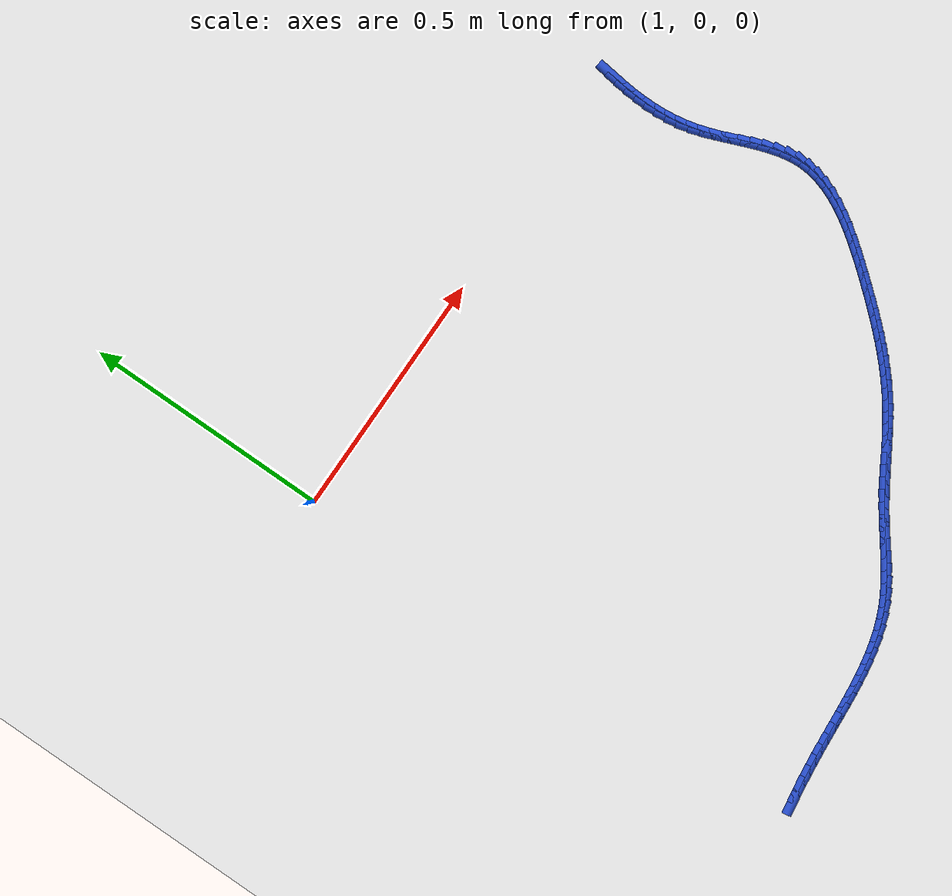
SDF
<sdf version="1.6">
 <world name="default">
  <model name="ground_plane">
   <static>1</static>
   <link name="link">
    <collision name="collision">
     <geometry><plane><normal>0 0 1</normal><size>100 100</size></plane></geometry>
     <surface><friction><ode><mu>100</mu><mu2>50</mu2></ode></friction></surface>
    </collision>
    <visual name="visual">
     <cast_shadows>0</cast_shadows>
     <geometry><plane><normal>0 0 1</normal><size>100 100</size></plane></geometry>
     <material>
      <script><uri>file://media/materials/scripts/gazebo.material</uri><name>Gazebo/WhiteGlow</name></script>
     </material>
    </visual>
   </link>
  </model>
  <model name="line">
   <link name="link_145">
    <pose>1.9955184508098398 -0.008092268205295312 0.01 0 1.57 1.4522831248272066</pose>
    <collision name="collision">
     <geometry><cylinder><radius>0.01</radius><length>0.08</length></cylinder></geometry>
    </collision>
    <visual name="visual">
     <material>
      <script><name>Gazebo/Blue</name><uri>file://media/materials/scripts/gazebo.material</uri></script>
     </material>
     <geometry><cylinder><radius>0.01</radius><length>0.08</length></cylinder></geometry>
    </visual>
   </link>
   <link name="link_146">
    <pose>1.992730319903585 -0.031507931349127084 0.01 0 1.57 1.488776585115233</pose>
    <collision name="collision">
     <geometry><cylinder><radius>0.01</radius><length>0.08</length></cylinder></geometry>
    </collision>
    <visual name="visual">
     <material>
      <script><name>Gazebo/Blue</name><uri>file://media/materials/scripts/gazebo.material</uri></script>
     </material>
     <geometry><cylinder><radius>0.01</radius><length>0.08</length></cylinder></geometry>
    </visual>
   </link>
   <link name="link_147">
    <pose>1.9908144411228046 -0.05481427958639143 0.01 0 1.57 1.530479069841515</pose>
    <collision name="collision">
     <geometry><cylinder><radius>0.01</radius><length>0.08</length></cylinder></geometry>
    </collision>
    <visual name="visual">
     <material>
      <script><name>Gazebo/Blue</name><uri>file://media/materials/scripts/gazebo.material</uri></script>
     </material>
     <geometry><cylinder><radius>0.01</radius><length>0.08</length></cylinder></geometry>
    </visual>
   </link>
   <link name="link_148">
    <pose>1.9898784963725058 -0.07801619474189017 0.01 0 1.57 -1.5642312407793884</pose>
    <collision name="collision">
     <geometry><cylinder><radius>0.01</radius><length>0.08</length></cylinder></geometry>
    </collision>
    <visual name="visual">
     <material>
      <script><name>Gazebo/Blue</name><uri>file://media/materials/scripts/gazebo.material</uri></script>
     </material>
     <geometry><cylinder><radius>0.01</radius><length>0.08</length></cylinder></geometry>
    </visual>
   </link>
   <link name="link_149">
    <pose>1.9900301675576948 -0.10111855864042515 0.01 0 1.57 -1.512318789969257</pose>
    <collision name="collision">
     <geometry><cylinder><radius>0.01</radius><length>0.08</length></cylinder></geometry>
    </collision>
    <visual name="visual">
     <material>
      <script><name>Gazebo/Blue</name><uri>file://media/materials/scripts/gazebo.material</uri></script>
     </material>
     <geometry><cylinder><radius>0.01</radius><length>0.08</length></cylinder></geometry>
    </visual>
   </link>
   <link name="link_150">
    <pose>1.991377136583378 -0.12412625310679817 0.01 0 1.57 -1.4556796687642202</pose>
    <collision name="collision">
     <geometry><cylinder><radius>0.01</radius><length>0.08</length></cylinder></geometry>
    </collision>
    <visual name="visual">
     <material>
      <script><name>Gazebo/Blue</name><uri>file://media/materials/scripts/gazebo.material</uri></script>
     </material>
     <geometry><cylinder><radius>0.01</radius><length>0.08</length></cylinder></geometry>
    </visual>
   </link>
   <link name="link_151">
    <pose>1.9940270853545605 -0.147044159965811 0.01 0 1.57 -1.394796831375881</pose>
    <collision name="collision">
     <geometry><cylinder><radius>0.01</radius><length>0.08</length></cylinder></geometry>
    </collision>
    <visual name="visual">
     <material>
      <script><name>Gazebo/Blue</name><uri>file://media/materials/scripts/gazebo.material</uri></script>
     </material>
     <geometry><cylinder><radius>0.01</radius><length>0.08</length></cylinder></geometry>
    </visual>
   </link>
   <link name="link_152">
    <pose>1.9980876957762495 -0.16987716104226475 0.01 0 1.57 -1.3303435392417946</pose>
    <collision name="collision">
     <geometry><cylinder><radius>0.01</radius><length>0.08</length></cylinder></geometry>
    </collision>
    <visual name="visual">
     <material>
      <script><name>Gazebo/Blue</name><uri>file://media/materials/scripts/gazebo.material</uri></script>
     </material>
     <geometry><cylinder><radius>0.01</radius><length>0.08</length></cylinder></geometry>
    </visual>
   </link>
   <link name="link_153">
    <pose>2.00366664975345 -0.19263013816096264 0.01 0 1.57 -1.2661140011665262</pose>
    <collision name="collision">
     <geometry><cylinder><radius>0.01</radius><length>0.08</length></cylinder></geometry>
    </collision>
    <visual name="visual">
     <material>
      <script><name>Gazebo/Blue</name><uri>file://media/materials/scripts/gazebo.material</uri></script>
     </material>
     <geometry><cylinder><radius>0.01</radius><length>0.08</length></cylinder></geometry>
    </visual>
   </link>
   <link name="link_154">
    <pose>2.01079800242413 -0.21530721281981616 0.01 0 1.57 -1.2186362302852527</pose>
    <collision name="collision">
     <geometry><cylinder><radius>0.01</radius><length>0.08</length></cylinder></geometry>
    </collision>
    <visual name="visual">
     <material>
      <script><name>Gazebo/Blue</name><uri>file://media/materials/scripts/gazebo.material</uri></script>
     </material>
     <geometry><cylinder><radius>0.01</radius><length>0.08</length></cylinder></geometry>
    </visual>
   </link>
   <link name="link_155">
    <pose>2.019103393406347 -0.23790824759539472 0.01 0 1.57 -1.1922739300528087</pose>
    <collision name="collision">
     <geometry><cylinder><radius>0.01</radius><length>0.08</length></cylinder></geometry>
    </collision>
    <visual name="visual">
     <material>
      <script><name>Gazebo/Blue</name><uri>file://media/materials/scripts/gazebo.material</uri></script>
     </material>
     <geometry><cylinder><radius>0.01</radius><length>0.08</length></cylinder></geometry>
    </visual>
   </link>
   <link name="link_156">
    <pose>2.0280609489334203 -0.26043162303416084 0.01 0 1.57 -1.1860696350824496</pose>
    <collision name="collision">
     <geometry><cylinder><radius>0.01</radius><length>0.08</length></cylinder></geometry>
    </collision>
    <visual name="visual">
     <material>
      <script><name>Gazebo/Blue</name><uri>file://media/materials/scripts/gazebo.material</uri></script>
     </material>
     <geometry><cylinder><radius>0.01</radius><length>0.08</length></cylinder></geometry>
    </visual>
   </link>
   <link name="link_157">
    <pose>2.037148649971566 -0.2828757181824364 0.01 0 1.57 -1.1999427197665633</pose>
    <collision name="collision">
     <geometry><cylinder><radius>0.01</radius><length>0.08</length></cylinder></geometry>
    </collision>
    <visual name="visual">
     <material>
      <script><name>Gazebo/Blue</name><uri>file://media/materials/scripts/gazebo.material</uri></script>
     </material>
     <geometry><cylinder><radius>0.01</radius><length>0.08</length></cylinder></geometry>
    </visual>
   </link>
   <link name="link_158">
    <pose>2.0458444774869977 -0.30523891208654347 0.01 0 1.57 -1.2347733994445658</pose>
    <collision name="collision">
     <geometry><cylinder><radius>0.01</radius><length>0.08</length></cylinder></geometry>
    </collision>
    <visual name="visual">
     <material>
      <script><name>Gazebo/Blue</name><uri>file://media/materials/scripts/gazebo.material</uri></script>
     </material>
     <geometry><cylinder><radius>0.01</radius><length>0.08</length></cylinder></geometry>
    </visual>
   </link>
   <link name="link_159">
    <pose>2.0536264124459294 -0.3275195837928038 0.01 0 1.57 -1.2923234848242484</pose>
    <collision name="collision">
     <geometry><cylinder><radius>0.01</radius><length>0.08</length></cylinder></geometry>
    </collision>
    <visual name="visual">
     <material>
      <script><name>Gazebo/Blue</name><uri>file://media/materials/scripts/gazebo.material</uri></script>
     </material>
     <geometry><cylinder><radius>0.01</radius><length>0.08</length></cylinder></geometry>
    </visual>
   </link>
   <link name="link_160">
    <pose>2.059972435814577 -0.3497161123475397 0.01 0 1.57 -1.3748823900939322</pose>
    <collision name="collision">
     <geometry><cylinder><radius>0.01</radius><length>0.08</length></cylinder></geometry>
    </collision>
    <visual name="visual">
     <material>
      <script><name>Gazebo/Blue</name><uri>file://media/materials/scripts/gazebo.material</uri></script>
     </material>
     <geometry><cylinder><radius>0.01</radius><length>0.08</length></cylinder></geometry>
    </visual>
   </link>
   <link name="link_161">
    <pose>2.064360528559154 -0.37182687679707294 0.01 0 1.57 -1.4843704531485467</pose>
    <collision name="collision">
     <geometry><cylinder><radius>0.01</radius><length>0.08</length></cylinder></geometry>
    </collision>
    <visual name="visual">
     <material>
      <script><name>Gazebo/Blue</name><uri>file://media/materials/scripts/gazebo.material</uri></script>
     </material>
     <geometry><cylinder><radius>0.01</radius><length>0.08</length></cylinder></geometry>
    </visual>
   </link>
   <link name="link_162">
    <pose>2.066268671645875 -0.3938502561877254 0.01 0 1.57 1.5255401296336752</pose>
    <collision name="collision">
     <geometry><cylinder><radius>0.01</radius><length>0.08</length></cylinder></geometry>
    </collision>
    <visual name="visual">
     <material>
      <script><name>Gazebo/Blue</name><uri>file://media/materials/scripts/gazebo.material</uri></script>
     </material>
     <geometry><cylinder><radius>0.01</radius><length>0.08</length></cylinder></geometry>
    </visual>
   </link>
   <link name="link_163">
    <pose>2.0652754941067366 -0.4157809410164994 0.01 0 1.57 1.399237916429022</pose>
    <collision name="collision">
     <geometry><cylinder><radius>0.01</radius><length>0.08</length></cylinder></geometry>
    </collision>
    <visual name="visual">
     <material>
      <script><name>Gazebo/Blue</name><uri>file://media/materials/scripts/gazebo.material</uri></script>
     </material>
     <geometry><cylinder><radius>0.01</radius><length>0.08</length></cylinder></geometry>
    </visual>
   </link>
   <link name="link_164">
    <pose>2.0614961359465607 -0.43759395973156817 0.01 0 1.57 1.2889720271413376</pose>
    <collision name="collision">
     <geometry><cylinder><radius>0.01</radius><length>0.08</length></cylinder></geometry>
    </collision>
    <visual name="visual">
     <material>
      <script><name>Gazebo/Blue</name><uri>file://media/materials/scripts/gazebo.material</uri></script>
     </material>
     <geometry><cylinder><radius>0.01</radius><length>0.08</length></cylinder></geometry>
    </visual>
   </link>
   <link name="link_165">
    <pose>2.0552237887005615 -0.45925781555037914 0.01 0 1.57 1.195164840934346</pose>
    <collision name="collision">
     <geometry><cylinder><radius>0.01</radius><length>0.08</length></cylinder></geometry>
    </collision>
    <visual name="visual">
     <material>
      <script><name>Gazebo/Blue</name><uri>file://media/materials/scripts/gazebo.material</uri></script>
     </material>
     <geometry><cylinder><radius>0.01</radius><length>0.08</length></cylinder></geometry>
    </visual>
   </link>
   <link name="link_166">
    <pose>2.0467517612340007 -0.48074100739046943 0.01 0 1.57 1.1168654327576373</pose>
    <collision name="collision">
     <geometry><cylinder><radius>0.01</radius><length>0.08</length></cylinder></geometry>
    </collision>
    <visual name="visual">
     <material>
      <script><name>Gazebo/Blue</name><uri>file://media/materials/scripts/gazebo.material</uri></script>
     </material>
     <geometry><cylinder><radius>0.01</radius><length>0.08</length></cylinder></geometry>
    </visual>
   </link>
   <link name="link_167">
    <pose>2.0363733624121414 -0.5020120341693759 0.01 0 1.57 1.0525172734010837</pose>
    <collision name="collision">
     <geometry><cylinder><radius>0.01</radius><length>0.08</length></cylinder></geometry>
    </collision>
    <visual name="visual">
     <material>
      <script><name>Gazebo/Blue</name><uri>file://media/materials/scripts/gazebo.material</uri></script>
     </material>
     <geometry><cylinder><radius>0.01</radius><length>0.08</length></cylinder></geometry>
    </visual>
   </link>
   <link name="link_168">
    <pose>2.0243819011002477 -0.5230393948046359 0.01 0 1.57 1.0004646953712335</pose>
    <collision name="collision">
     <geometry><cylinder><radius>0.01</radius><length>0.08</length></cylinder></geometry>
    </collision>
    <visual name="visual">
     <material>
      <script><name>Gazebo/Blue</name><uri>file://media/materials/scripts/gazebo.material</uri></script>
     </material>
     <geometry><cylinder><radius>0.01</radius><length>0.08</length></cylinder></geometry>
    </visual>
   </link>
   <link name="link_169">
    <pose>2.011070686163581 -0.5437915882137854 0.01 0 1.57 0.9592242166368631</pose>
    <collision name="collision">
     <geometry><cylinder><radius>0.01</radius><length>0.08</length></cylinder></geometry>
    </collision>
    <visual name="visual">
     <material>
      <script><name>Gazebo/Blue</name><uri>file://media/materials/scripts/gazebo.material</uri></script>
     </material>
     <geometry><cylinder><radius>0.01</radius><length>0.08</length></cylinder></geometry>
    </visual>
   </link>
   <link name="link_170">
    <pose>1.9967330264674055 -0.564237113314363 0.01 0 1.57 0.9276047070627488</pose>
    <collision name="collision">
     <geometry><cylinder><radius>0.01</radius><length>0.08</length></cylinder></geometry>
    </collision>
    <visual name="visual">
     <material>
      <script><name>Gazebo/Blue</name><uri>file://media/materials/scripts/gazebo.material</uri></script>
     </material>
     <geometry><cylinder><radius>0.01</radius><length>0.08</length></cylinder></geometry>
    </visual>
   </link>
   <link name="link_171">
    <pose>1.9816622308769831 -0.5843444690239051 0.01 0 1.57 0.9047506166555871</pose>
    <collision name="collision">
     <geometry><cylinder><radius>0.01</radius><length>0.08</length></cylinder></geometry>
    </collision>
    <visual name="visual">
     <material>
      <script><name>Gazebo/Blue</name><uri>file://media/materials/scripts/gazebo.material</uri></script>
     </material>
     <geometry><cylinder><radius>0.01</radius><length>0.08</length></cylinder></geometry>
    </visual>
   </link>
   <link name="link_172">
    <pose>1.9661516082575767 -0.6040821542599486 0.01 0 1.57 0.8901197725143889</pose>
    <collision name="collision">
     <geometry><cylinder><radius>0.01</radius><length>0.08</length></cylinder></geometry>
    </collision>
    <visual name="visual">
     <material>
      <script><name>Gazebo/Blue</name><uri>file://media/materials/scripts/gazebo.material</uri></script>
     </material>
     <geometry><cylinder><radius>0.01</radius><length>0.08</length></cylinder></geometry>
    </visual>
   </link>
   <link name="link_173">
    <pose>1.9504932302048281 -0.6234187140948049 0.01 0 1.57 0.879982913747289</pose>
    <collision name="collision">
     <geometry><cylinder><radius>0.01</radius><length>0.08</length></cylinder></geometry>
    </collision>
    <visual name="visual">
     <material>
      <script><name>Gazebo/Blue</name><uri>file://media/materials/scripts/gazebo.material</uri></script>
     </material>
     <geometry><cylinder><radius>0.01</radius><length>0.08</length></cylinder></geometry>
    </visual>
   </link>
   <link name="link_174">
    <pose>1.9348615992112885 -0.6423270793671032 0.01 0 1.57 0.8678353109830297</pose>
    <collision name="collision">
     <geometry><cylinder><radius>0.01</radius><length>0.08</length></cylinder></geometry>
    </collision>
    <visual name="visual">
     <material>
      <script><name>Gazebo/Blue</name><uri>file://media/materials/scripts/gazebo.material</uri></script>
     </material>
     <geometry><cylinder><radius>0.01</radius><length>0.08</length></cylinder></geometry>
    </visual>
   </link>
   <link name="link_175">
    <pose>1.919218401087608 -0.6607881197719466 0.01 0 1.57 0.8529270092139168</pose>
    <collision name="collision">
     <geometry><cylinder><radius>0.01</radius><length>0.08</length></cylinder></geometry>
    </collision>
    <visual name="visual">
     <material>
      <script><name>Gazebo/Blue</name><uri>file://media/materials/scripts/gazebo.material</uri></script>
     </material>
     <geometry><cylinder><radius>0.01</radius><length>0.08</length></cylinder></geometry>
    </visual>
   </link>
   <link name="link_176">
    <pose>1.9035029056153734 -0.6787835412059811 0.01 0 1.57 0.8352065659324367</pose>
    <collision name="collision">
     <geometry><cylinder><radius>0.01</radius><length>0.08</length></cylinder></geometry>
    </collision>
    <visual name="visual">
     <material>
      <script><name>Gazebo/Blue</name><uri>file://media/materials/scripts/gazebo.material</uri></script>
     </material>
     <geometry><cylinder><radius>0.01</radius><length>0.08</length></cylinder></geometry>
    </visual>
   </link>
   <link name="link_177">
    <pose>1.8876543825761696 -0.6962950495658511 0.01 0 1.57 0.814647733594029</pose>
    <collision name="collision">
     <geometry><cylinder><radius>0.01</radius><length>0.08</length></cylinder></geometry>
    </collision>
    <visual name="visual">
     <material>
      <script><name>Gazebo/Blue</name><uri>file://media/materials/scripts/gazebo.material</uri></script>
     </material>
     <geometry><cylinder><radius>0.01</radius><length>0.08</length></cylinder></geometry>
    </visual>
   </link>
   <link name="link_178">
    <pose>1.871612101751582 -0.7133043507482024 0.01 0 1.57 0.7912552793359019</pose>
    <collision name="collision">
     <geometry><cylinder><radius>0.01</radius><length>0.08</length></cylinder></geometry>
    </collision>
    <visual name="visual">
     <material>
      <script><name>Gazebo/Blue</name><uri>file://media/materials/scripts/gazebo.material</uri></script>
     </material>
     <geometry><cylinder><radius>0.01</radius><length>0.08</length></cylinder></geometry>
    </visual>
   </link>
   <link name="link_179">
    <pose>1.8553153329231957 -0.7297931506496798 0.01 0 1.57 0.7650710481394957</pose>
    <collision name="collision">
     <geometry><cylinder><radius>0.01</radius><length>0.08</length></cylinder></geometry>
    </collision>
    <visual name="visual">
     <material>
      <script><name>Gazebo/Blue</name><uri>file://media/materials/scripts/gazebo.material</uri></script>
     </material>
     <geometry><cylinder><radius>0.01</radius><length>0.08</length></cylinder></geometry>
    </visual>
   </link>
   <link name="link_180">
    <pose>1.8387033458725965 -0.7457431551669286 0.01 0 1.57 0.7361798051041474</pose>
    <collision name="collision">
     <geometry><cylinder><radius>0.01</radius><length>0.08</length></cylinder></geometry>
    </collision>
    <visual name="visual">
     <material>
      <script><name>Gazebo/Blue</name><uri>file://media/materials/scripts/gazebo.material</uri></script>
     </material>
     <geometry><cylinder><radius>0.01</radius><length>0.08</length></cylinder></geometry>
    </visual>
   </link>
   <link name="link_181">
    <pose>1.8217154103813702 -0.7611360701965943 0.01 0 1.57 0.7047142347113198</pose>
    <collision name="collision">
     <geometry><cylinder><radius>0.01</radius><length>0.08</length></cylinder></geometry>
    </collision>
    <visual name="visual">
     <material>
      <script><name>Gazebo/Blue</name><uri>file://media/materials/scripts/gazebo.material</uri></script>
     </material>
     <geometry><cylinder><radius>0.01</radius><length>0.08</length></cylinder></geometry>
    </visual>
   </link>
   <link name="link_182">
    <pose>1.8042907962311012 -0.7759536016353218 0.01 0 1.57 0.6708583547878879</pose>
    <collision name="collision">
     <geometry><cylinder><radius>0.01</radius><length>0.08</length></cylinder></geometry>
    </collision>
    <visual name="visual">
     <material>
      <script><name>Gazebo/Blue</name><uri>file://media/materials/scripts/gazebo.material</uri></script>
     </material>
     <geometry><cylinder><radius>0.01</radius><length>0.08</length></cylinder></geometry>
    </visual>
   </link>
   <link name="link_183">
    <pose>1.7863687732033757 -0.7901774553797566 0.01 0 1.57 0.6349383120565114</pose>
    <collision name="collision">
     <geometry><cylinder><radius>0.01</radius><length>0.08</length></cylinder></geometry>
    </collision>
    <visual name="visual">
     <material>
      <script><name>Gazebo/Blue</name><uri>file://media/materials/scripts/gazebo.material</uri></script>
     </material>
     <geometry><cylinder><radius>0.01</radius><length>0.08</length></cylinder></geometry>
    </visual>
   </link>
   <link name="link_184">
    <pose>1.7678901389925474 -0.8037907702092068 0.01 0 1.57 0.6013789916894229</pose>
    <collision name="collision">
     <geometry><cylinder><radius>0.01</radius><length>0.08</length></cylinder></geometry>
    </collision>
    <visual name="visual">
     <material>
      <script><name>Gazebo/Blue</name><uri>file://media/materials/scripts/gazebo.material</uri></script>
     </material>
     <geometry><cylinder><radius>0.01</radius><length>0.08</length></cylinder></geometry>
    </visual>
   </link>
   <link name="link_185">
    <pose>1.7488671160820741 -0.8168436673539446 0.01 0 1.57 0.5760557590125011</pose>
    <collision name="collision">
     <geometry><cylinder><radius>0.01</radius><length>0.08</length></cylinder></geometry>
    </collision>
    <visual name="visual">
     <material>
      <script><name>Gazebo/Blue</name><uri>file://media/materials/scripts/gazebo.material</uri></script>
     </material>
     <geometry><cylinder><radius>0.01</radius><length>0.08</length></cylinder></geometry>
    </visual>
   </link>
   <link name="link_186">
    <pose>1.7294123380675337 -0.8294804339840767 0.01 0 1.57 0.5592544231906783</pose>
    <collision name="collision">
     <geometry><cylinder><radius>0.01</radius><length>0.08</length></cylinder></geometry>
    </collision>
    <visual name="visual">
     <material>
      <script><name>Gazebo/Blue</name><uri>file://media/materials/scripts/gazebo.material</uri></script>
     </material>
     <geometry><cylinder><radius>0.01</radius><length>0.08</length></cylinder></geometry>
    </visual>
   </link>
   <link name="link_187">
    <pose>1.7096459754053221 -0.8418524253677249 0.01 0 1.57 0.5508136680130788</pose>
    <collision name="collision">
     <geometry><cylinder><radius>0.01</radius><length>0.08</length></cylinder></geometry>
    </collision>
    <visual name="visual">
     <material>
      <script><name>Gazebo/Blue</name><uri>file://media/materials/scripts/gazebo.material</uri></script>
     </material>
     <geometry><cylinder><radius>0.01</radius><length>0.08</length></cylinder></geometry>
    </visual>
   </link>
   <link name="link_188">
    <pose>1.6896881985518337 -0.854110996773011 0.01 0 1.57 0.5506024996118823</pose>
    <collision name="collision">
     <geometry><cylinder><radius>0.01</radius><length>0.08</length></cylinder></geometry>
    </collision>
    <visual name="visual">
     <material>
      <script><name>Gazebo/Blue</name><uri>file://media/materials/scripts/gazebo.material</uri></script>
     </material>
     <geometry><cylinder><radius>0.01</radius><length>0.08</length></cylinder></geometry>
    </visual>
   </link>
   <link name="link_189">
    <pose>1.6696591779634637 -0.8664075034680576 0.01 0 1.57 0.5585359180002576</pose>
    <collision name="collision">
     <geometry><cylinder><radius>0.01</radius><length>0.08</length></cylinder></geometry>
    </collision>
    <visual name="visual">
     <material>
      <script><name>Gazebo/Blue</name><uri>file://media/materials/scripts/gazebo.material</uri></script>
     </material>
     <geometry><cylinder><radius>0.01</radius><length>0.08</length></cylinder></geometry>
    </visual>
   </link>
   <link name="link_190">
    <pose>1.6496790840966076 -0.8788933007209859 0.01 0 1.57 0.5745738712467254</pose>
    <collision name="collision">
     <geometry><cylinder><radius>0.01</radius><length>0.08</length></cylinder></geometry>
    </collision>
    <visual name="visual">
     <material>
      <script><name>Gazebo/Blue</name><uri>file://media/materials/scripts/gazebo.material</uri></script>
     </material>
     <geometry><cylinder><radius>0.01</radius><length>0.08</length></cylinder></geometry>
    </visual>
   </link>
   <link name="link_191">
    <pose>1.6298680874076608 -0.8917197437999186 0.01 0 1.57 0.5987044195310732</pose>
    <collision name="collision">
     <geometry><cylinder><radius>0.01</radius><length>0.08</length></cylinder></geometry>
    </collision>
    <visual name="visual">
     <material>
      <script><name>Gazebo/Blue</name><uri>file://media/materials/scripts/gazebo.material</uri></script>
     </material>
     <geometry><cylinder><radius>0.01</radius><length>0.08</length></cylinder></geometry>
    </visual>
   </link>
   <link name="link_192">
    <pose>1.6103463550158539 -0.9050381826404256 0.01 0 1.57 0.6269743721362212</pose>
    <collision name="collision">
     <geometry><cylinder><radius>0.01</radius><length>0.08</length></cylinder></geometry>
    </collision>
    <visual name="visual">
     <material>
      <script><name>Gazebo/Blue</name><uri>file://media/materials/scripts/gazebo.material</uri></script>
     </material>
     <geometry><cylinder><radius>0.01</radius><length>0.08</length></cylinder></geometry>
    </visual>
   </link>
   <link name="link_193">
    <pose>1.5911844947109555 -0.918920774886795 0.01 0 1.57 0.6455432518118133</pose>
    <collision name="collision">
     <geometry><cylinder><radius>0.01</radius><length>0.08</length></cylinder></geometry>
    </collision>
    <visual name="visual">
     <material>
      <script><name>Gazebo/Blue</name><uri>file://media/materials/scripts/gazebo.material</uri></script>
     </material>
     <geometry><cylinder><radius>0.01</radius><length>0.08</length></cylinder></geometry>
    </visual>
   </link>
   <link name="link_194">
    <pose>1.5722785139313316 -0.9331606792130629 0.01 0 1.57 0.651441969587698</pose>
    <collision name="collision">
     <geometry><cylinder><radius>0.01</radius><length>0.08</length></cylinder></geometry>
    </collision>
    <visual name="visual">
     <material>
      <script><name>Gazebo/Blue</name><uri>file://media/materials/scripts/gazebo.material</uri></script>
     </material>
     <geometry><cylinder><radius>0.01</radius><length>0.08</length></cylinder></geometry>
    </visual>
   </link>
   <link name="link_195">
    <pose>1.5534859893429853 -0.9474896446464406 0.01 0 1.57 0.6446445808548152</pose>
    <collision name="collision">
     <geometry><cylinder><radius>0.01</radius><length>0.08</length></cylinder></geometry>
    </collision>
    <visual name="visual">
     <material>
      <script><name>Gazebo/Blue</name><uri>file://media/materials/scripts/gazebo.material</uri></script>
     </material>
     <geometry><cylinder><radius>0.01</radius><length>0.08</length></cylinder></geometry>
    </visual>
   </link>
   <link name="link_196">
    <pose>1.5346644976119193 -0.961639420214139 0.01 0 1.57 0.6249745740603517</pose>
    <collision name="collision">
     <geometry><cylinder><radius>0.01</radius><length>0.08</length></cylinder></geometry>
    </collision>
    <visual name="visual">
     <material>
      <script><name>Gazebo/Blue</name><uri>file://media/materials/scripts/gazebo.material</uri></script>
     </material>
     <geometry><cylinder><radius>0.01</radius><length>0.08</length></cylinder></geometry>
    </visual>
   </link>
   <link name="link_197">
    <pose>1.5156716154041368 -0.9753417549433688 0.01 0 1.57 0.5921332604747954</pose>
    <collision name="collision">
     <geometry><cylinder><radius>0.01</radius><length>0.08</length></cylinder></geometry>
    </collision>
    <visual name="visual">
     <material>
      <script><name>Gazebo/Blue</name><uri>file://media/materials/scripts/gazebo.material</uri></script>
     </material>
     <geometry><cylinder><radius>0.01</radius><length>0.08</length></cylinder></geometry>
    </visual>
   </link>
   <link name="link_198">
    <pose>1.4963649193856399 -0.9883283978613411 0.01 0 1.57 0.5457946622026417</pose>
    <collision name="collision">
     <geometry><cylinder><radius>0.01</radius><length>0.08</length></cylinder></geometry>
    </collision>
    <visual name="visual">
     <material>
      <script><name>Gazebo/Blue</name><uri>file://media/materials/scripts/gazebo.material</uri></script>
     </material>
     <geometry><cylinder><radius>0.01</radius><length>0.08</length></cylinder></geometry>
    </visual>
   </link>
   <link name="link_199">
    <pose>1.4766019862224322 -1.0003310979952669 0.01 0 1.57 0.4857801600242347</pose>
    <collision name="collision">
     <geometry><cylinder><radius>0.01</radius><length>0.08</length></cylinder></geometry>
    </collision>
    <visual name="visual">
     <material>
      <script><name>Gazebo/Blue</name><uri>file://media/materials/scripts/gazebo.material</uri></script>
     </material>
     <geometry><cylinder><radius>0.01</radius><length>0.08</length></cylinder></geometry>
    </visual>
   </link>
   <link name="link_200">
    <pose>1.4562403950211935 -1.0110816086933252 0.01 0 1.57 0.41612475716957803</pose>
    <collision name="collision">
     <geometry><cylinder><radius>0.01</radius><length>0.08</length></cylinder></geometry>
    </collision>
    <visual name="visual">
     <material>
      <script><name>Gazebo/Blue</name><uri>file://media/materials/scripts/gazebo.material</uri></script>
     </material>
     <geometry><cylinder><radius>0.01</radius><length>0.08</length></cylinder></geometry>
    </visual>
   </link>
   <link name="link_201">
    <pose>1.4351810641638634 -1.0203884110486188 0.01 0 1.57 0.3508941650580453</pose>
    <collision name="collision">
     <geometry><cylinder><radius>0.01</radius><length>0.08</length></cylinder></geometry>
    </collision>
    <visual name="visual">
     <material>
      <script><name>Gazebo/Blue</name><uri>file://media/materials/scripts/gazebo.material</uri></script>
     </material>
     <geometry><cylinder><radius>0.01</radius><length>0.08</length></cylinder></geometry>
    </visual>
   </link>
   <link name="link_202">
    <pose>1.4134787649525977 -1.0283323669808213 0.01 0 1.57 0.29333025321816086</pose>
    <collision name="collision">
     <geometry><cylinder><radius>0.01</radius><length>0.08</length></cylinder></geometry>
    </collision>
    <visual name="visual">
     <material>
      <script><name>Gazebo/Blue</name><uri>file://media/materials/scripts/gazebo.material</uri></script>
     </material>
     <geometry><cylinder><radius>0.01</radius><length>0.08</length></cylinder></geometry>
    </visual>
   </link>
   <link name="link_203">
    <pose>1.3912223936005346 -1.0350547530669707 0.01 0 1.57 0.24339181335044227</pose>
    <collision name="collision">
     <geometry><cylinder><radius>0.01</radius><length>0.08</length></cylinder></geometry>
    </collision>
    <visual name="visual">
     <material>
      <script><name>Gazebo/Blue</name><uri>file://media/materials/scripts/gazebo.material</uri></script>
     </material>
     <geometry><cylinder><radius>0.01</radius><length>0.08</length></cylinder></geometry>
    </visual>
   </link>
   <link name="link_204">
    <pose>1.368500846320812 -1.0406968458841066 0.01 0 1.57 0.20086959488046213</pose>
    <collision name="collision">
     <geometry><cylinder><radius>0.01</radius><length>0.08</length></cylinder></geometry>
    </collision>
    <visual name="visual">
     <material>
      <script><name>Gazebo/Blue</name><uri>file://media/materials/scripts/gazebo.material</uri></script>
     </material>
     <geometry><cylinder><radius>0.01</radius><length>0.08</length></cylinder></geometry>
    </visual>
   </link>
   <link name="link_205">
    <pose>1.3454030193265674 -1.0453999220092676 0.01 0 1.57 0.1654732278783924</pose>
    <collision name="collision">
     <geometry><cylinder><radius>0.01</radius><length>0.08</length></cylinder></geometry>
    </collision>
    <visual name="visual">
     <material>
      <script><name>Gazebo/Blue</name><uri>file://media/materials/scripts/gazebo.material</uri></script>
     </material>
     <geometry><cylinder><radius>0.01</radius><length>0.08</length></cylinder></geometry>
    </visual>
   </link>
   <link name="link_206">
    <pose>1.3220178088309396 -1.0493052580194933 0.01 0 1.57 0.1368975911480711</pose>
    <collision name="collision">
     <geometry><cylinder><radius>0.01</radius><length>0.08</length></cylinder></geometry>
    </collision>
    <visual name="visual">
     <material>
      <script><name>Gazebo/Blue</name><uri>file://media/materials/scripts/gazebo.material</uri></script>
     </material>
     <geometry><cylinder><radius>0.01</radius><length>0.08</length></cylinder></geometry>
    </visual>
   </link>
   <link name="link_207">
    <pose>1.2984341110470656 -1.0525541304918224 0.01 0 1.57 0.1148701281554581</pose>
    <collision name="collision">
     <geometry><cylinder><radius>0.01</radius><length>0.08</length></cylinder></geometry>
    </collision>
    <visual name="visual">
     <material>
      <script><name>Gazebo/Blue</name><uri>file://media/materials/scripts/gazebo.material</uri></script>
     </material>
     <geometry><cylinder><radius>0.01</radius><length>0.08</length></cylinder></geometry>
    </visual>
   </link>
   <link name="link_208">
    <pose>1.2747408221880832 -1.0552878160032946 0.01 0 1.57 0.09918333882340342</pose>
    <collision name="collision">
     <geometry><cylinder><radius>0.01</radius><length>0.08</length></cylinder></geometry>
    </collision>
    <visual name="visual">
     <material>
      <script><name>Gazebo/Blue</name><uri>file://media/materials/scripts/gazebo.material</uri></script>
     </material>
     <geometry><cylinder><radius>0.01</radius><length>0.08</length></cylinder></geometry>
    </visual>
   </link>
   <link name="link_209">
    <pose>1.2510268384671315 -1.0576475911309482 0.01 0 1.57 0.08971710009671609</pose>
    <collision name="collision">
     <geometry><cylinder><radius>0.01</radius><length>0.08</length></cylinder></geometry>
    </collision>
    <visual name="visual">
     <material>
      <script><name>Gazebo/Blue</name><uri>file://media/materials/scripts/gazebo.material</uri></script>
     </material>
     <geometry><cylinder><radius>0.01</radius><length>0.08</length></cylinder></geometry>
    </visual>
   </link>
   <link name="link_210">
    <pose>1.2273810560973468 -1.0597747324518225 0.01 0 1.57 0.08645479595800463</pose>
    <collision name="collision">
     <geometry><cylinder><radius>0.01</radius><length>0.08</length></cylinder></geometry>
    </collision>
    <visual name="visual">
     <material>
      <script><name>Gazebo/Blue</name><uri>file://media/materials/scripts/gazebo.material</uri></script>
     </material>
     <geometry><cylinder><radius>0.01</radius><length>0.08</length></cylinder></geometry>
    </visual>
   </link>
   <link name="link_211">
    <pose>1.2038923712918679 -1.0618105165429568 0.01 0 1.57 0.08946019545056617</pose>
    <collision name="collision">
     <geometry><cylinder><radius>0.01</radius><length>0.08</length></cylinder></geometry>
    </collision>
    <visual name="visual">
     <material>
      <script><name>Gazebo/Blue</name><uri>file://media/materials/scripts/gazebo.material</uri></script>
     </material>
     <geometry><cylinder><radius>0.01</radius><length>0.08</length></cylinder></geometry>
    </visual>
   </link>
   <link name="link_212">
    <pose>1.1806475506817355 -1.0638955680182285 0.01 0 1.57 0.09720814212823585</pose>
    <collision name="collision">
     <geometry><cylinder><radius>0.01</radius><length>0.08</length></cylinder></geometry>
    </collision>
    <visual name="visual">
     <material>
      <script><name>Gazebo/Blue</name><uri>file://media/materials/scripts/gazebo.material</uri></script>
     </material>
     <geometry><cylinder><radius>0.01</radius><length>0.08</length></cylinder></geometry>
    </visual>
   </link>
   <link name="link_213">
    <pose>1.157633140776301 -1.0661398294964501 0.01 0 1.57 0.10727179368843245</pose>
    <collision name="collision">
     <geometry><cylinder><radius>0.01</radius><length>0.08</length></cylinder></geometry>
    </collision>
    <visual name="visual">
     <material>
      <script><name>Gazebo/Blue</name><uri>file://media/materials/scripts/gazebo.material</uri></script>
     </material>
     <geometry><cylinder><radius>0.01</radius><length>0.08</length></cylinder></geometry>
    </visual>
   </link>
   <link name="link_214">
    <pose>1.134694406642238 -1.0686099908398614 0.01 0 1.57 0.1192610662426632</pose>
    <collision name="collision">
     <geometry><cylinder><radius>0.01</radius><length>0.08</length></cylinder></geometry>
    </collision>
    <visual name="visual">
     <material>
      <script><name>Gazebo/Blue</name><uri>file://media/materials/scripts/gazebo.material</uri></script>
     </material>
     <geometry><cylinder><radius>0.01</radius><length>0.08</length></cylinder></geometry>
    </visual>
   </link>
   <link name="link_215">
    <pose>1.1116659667405364 -1.0713694824943547 0.01 0 1.57 0.13287991251680398</pose>
    <collision name="collision">
     <geometry><cylinder><radius>0.01</radius><length>0.08</length></cylinder></geometry>
    </collision>
    <visual name="visual">
     <material>
      <script><name>Gazebo/Blue</name><uri>file://media/materials/scripts/gazebo.material</uri></script>
     </material>
     <geometry><cylinder><radius>0.01</radius><length>0.08</length></cylinder></geometry>
    </visual>
   </link>
   <link name="link_216">
    <pose>1.0883824395321873 -1.074481734905822 0.01 0 1.57 0.1477693480908405</pose>
    <collision name="collision">
     <geometry><cylinder><radius>0.01</radius><length>0.08</length></cylinder></geometry>
    </collision>
    <visual name="visual">
     <material>
      <script><name>Gazebo/Blue</name><uri>file://media/materials/scripts/gazebo.material</uri></script>
     </material>
     <geometry><cylinder><radius>0.01</radius><length>0.08</length></cylinder></geometry>
    </visual>
   </link>
   <link name="link_217">
    <pose>1.0646784434781784 -1.0780101785201557 0.01 0 1.57 0.16233546676486996</pose>
    <collision name="collision">
     <geometry><cylinder><radius>0.01</radius><length>0.08</length></cylinder></geometry>
    </collision>
    <visual name="visual">
     <material>
      <script><name>Gazebo/Blue</name><uri>file://media/materials/scripts/gazebo.material</uri></script>
     </material>
     <geometry><cylinder><radius>0.01</radius><length>0.08</length></cylinder></geometry>
    </visual>
   </link>
  </model>
 </world>
</sdf>
